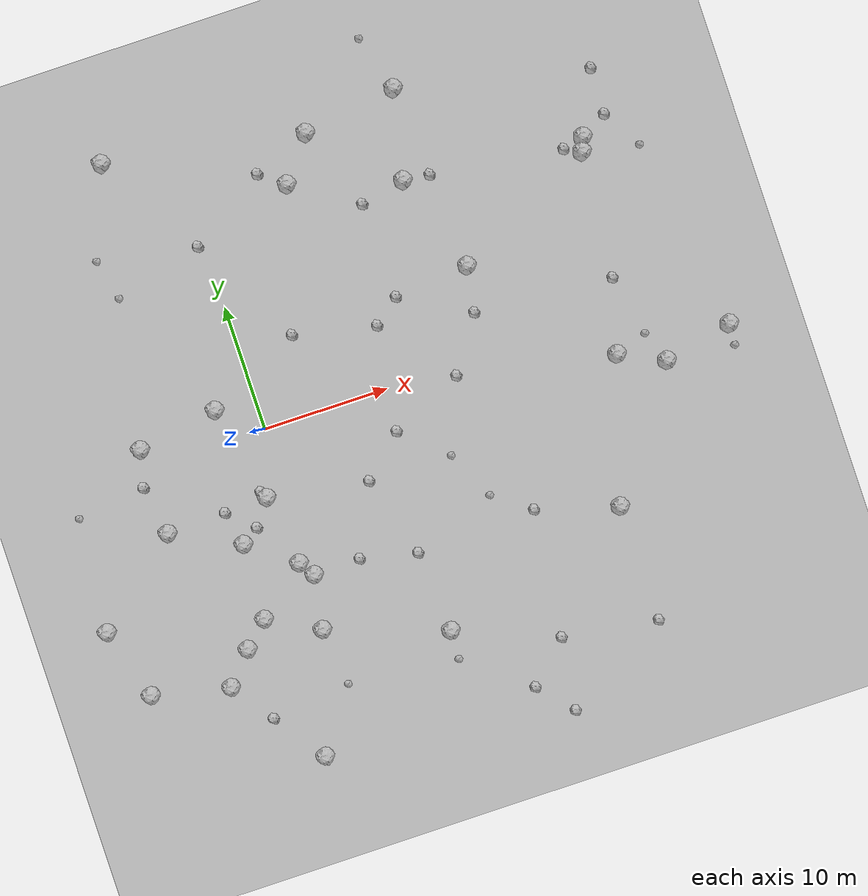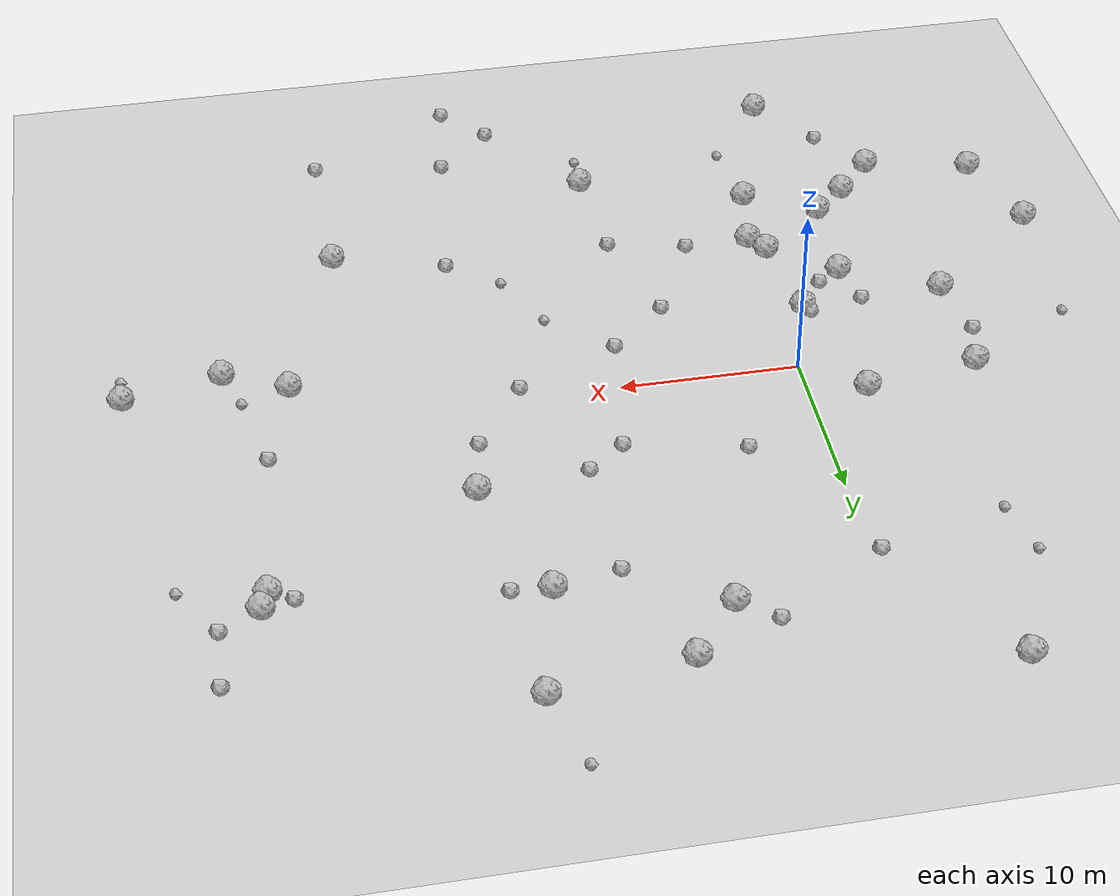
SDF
<sdf version="1.6">
 <world name="default">
  <include><uri>model://custom_ground</uri></include>
  <include><uri>model://sun</uri></include>
  <model name="rock1_0_0">
   <include><uri>model://rock1</uri><pose>10.308093503110921 20.846645113924552 0.5 0 0 0</pose></include>
  </model>
  <model name="rock1_0_1">
   <include><uri>model://rock1</uri><pose>8.833805726094432 -19.33073141889802 0.5 0 0 0</pose></include>
  </model>
  <model name="rock1_0_2">
   <include><uri>model://rock1</uri><pose>7.675220763039437 17.51723559488029 0.5 0 0 0</pose></include>
  </model>
  <model name="rock1_0_3">
   <include><uri>model://rock1</uri><pose>-14.815169350126993 -16.806266810537945 0.5 0 0 0</pose></include>
  </model>
  <model name="rock1_0_4">
   <include><uri>model://rock1</uri><pose>-9.627526794967379 -5.276134784586464 0.5 0 0 0</pose></include>
  </model>
  <model name="rock1_0_5">
   <include><uri>model://rock1</uri><pose>0.14350048495730405 -11.881437862271778 0.5 0 0 0</pose></include>
  </model>
  <model name="rock1_0_6">
   <include><uri>model://rock1</uri><pose>-16.51005586390668 -11.096822655782145 0.5 0 0 0</pose></include>
  </model>
  <model name="rock1_0_7">
   <include><uri>model://rock1</uri><pose>17.850193441742313 21.996792658042708 0.5 0 0 0</pose></include>
  </model>
  <model name="rock1_0_8">
   <include><uri>model://rock1</uri><pose>31.350161642384208 -4.706448587294485 0.5 0 0 0</pose></include>
  </model>
  <model name="rock1_0_9">
   <include><uri>model://rock1</uri><pose>16.329474908900508 14.978773140821836 0.5 0 0 0</pose></include>
  </model>
  <model name="rock1_0_10">
   <include><uri>model://rock1</uri><pose>36.83162018284337 -3.521574330771241 0.5 0 0 0</pose></include>
  </model>
  <model name="rock1_0_11">
   <include><uri>model://rock1</uri><pose>-3.4743051252785584 -25.518928062521944 0.5 0 0 0</pose></include>
  </model>
  <model name="rock1_0_12">
   <include><uri>model://rock1</uri><pose>-4.624492077895466 -13.942661119941754 0.5 0 0 0</pose></include>
  </model>
  <model name="rock1_0_13">
   <include><uri>model://rock1</uri><pose>-9.591353607719553 1.5476800889334967 0.5 0 0 0</pose></include>
  </model>
  <model name="rock1_0_14">
   <include><uri>model://rock1</uri><pose>24.333814955989972 -14.313478101322602 0.5 0 0 0</pose></include>
  </model>
  <model name="rock1_0_15">
   <include><uri>model://rock1</uri><pose>-4.317302781004811 -7.92902811894939 0.5 0 0 0</pose></include>
  </model>
  <model name="rock1_0_16">
   <include><uri>model://rock1</uri><pose>18.958581479578548 7.140094198507832 0.5 0 0 0</pose></include>
  </model>
  <model name="rock1_0_17">
   <include><uri>model://rock1</uri><pose>-8.718593291940799 -18.15909330203728 0.5 0 0 0</pose></include>
  </model>
  <model name="rock1_0_18">
   <include><uri>model://rock1</uri><pose>27.829667220051853 -3.022567563481587 0.5 0 0 0</pose></include>
  </model>
  <model name="rock1_0_19">
   <include><uri>model://rock1</uri><pose>-6.571041898843209 -15.758539917897746 0.5 0 0 0</pose></include>
  </model>
  <model name="rock1_0_20">
   <include><uri>model://rock1</uri><pose>-0.6818419119051597 -10.650925066535454 0.5 0 0 0</pose></include>
  </model>
  <model name="rock1_0_21">
   <include><uri>model://rock1</uri><pose>-5.489286542534973 23.559704599065363 0.5 0 0 0</pose></include>
  </model>
  <model name="rock1_0_22">
   <include><uri>model://rock1</uri><pose>-1.4662017126245992 -5.041043228103966 0.5 0 0 0</pose></include>
  </model>
  <model name="rock1_0_23">
   <include><uri>model://rock1</uri><pose>30.205027753007755 12.71567330010236 0.5 0 0 0</pose></include>
  </model>
  <model name="rock1_0_24">
   <include><uri>model://rock1</uri><pose>-3.1466381334157134 2.6419007982833307 0.5 0 0 0</pose></include>
  </model>
  <model name="rock1_0_25">
   <include><uri>model://rock1</uri><pose>30.624927037974302 13.80586450997398 0.5 0 0 0</pose></include>
  </model>
  <model name="rock1_0_26">
   <include><uri>model://rock1</uri><pose>-0.5845815208233027 -16.12360997560674 0.5 0 0 0</pose></include>
  </model>
  <model name="rock2_0_0">
   <include><uri>model://rock2</uri><pose>29.389943417925736 2.700648240450519 0.3 0 0 0</pose></include>
  </model>
  <model name="rock2_0_1">
   <include><uri>model://rock2</uri><pose>-2.97833081523169 -7.046550292103543 0.3 0 0 0</pose></include>
  </model>
  <model name="rock2_0_2">
   <include><uri>model://rock2</uri><pose>16.819238796077187 -22.585209690104943 0.3 0 0 0</pose></include>
  </model>
  <model name="rock2_0_3">
   <include><uri>model://rock2</uri><pose>-4.970915378720646 -5.177961687225157 0.3 0 0 0</pose></include>
  </model>
  <model name="rock2_0_4">
   <include><uri>model://rock2</uri><pose>18.42582986394212 14.766715410593314 0.3 0 0 0</pose></include>
  </model>
  <model name="rock2_0_5">
   <include><uri>model://rock2</uri><pose>9.697750903959133 -3.353988137764418 0.3 0 0 0</pose></include>
  </model>
  <model name="rock2_0_6">
   <include><uri>model://rock2</uri><pose>32.78182317745237 14.987776705843743 0.3 0 0 0</pose></include>
  </model>
  <model name="rock2_0_7">
   <include><uri>model://rock2</uri><pose>-0.43322149133977916 15.128798400059821 0.3 0 0 0</pose></include>
  </model>
  <model name="rock2_0_8">
   <include><uri>model://rock2</uri><pose>3.843271927718213 -11.854586118405724 0.3 0 0 0</pose></include>
  </model>
  <model name="rock2_0_9">
   <include><uri>model://rock2</uri><pose>13.670348708983113 -25.620359187521668 0.3 0 0 0</pose></include>
  </model>
  <model name="rock2_0_10">
   <include><uri>model://rock2</uri><pose>10.847322338386014 4.922099397847525 0.3 0 0 0</pose></include>
  </model>
  <model name="rock2_0_11">
   <include><uri>model://rock2</uri><pose>24.42032482344316 -23.670386814437343 0.3 0 0 0</pose></include>
  </model>
  <model name="rock2_0_12">
   <include><uri>model://rock2</uri><pose>15.472171147328659 -0.7111234026345805 0.3 0 0 0</pose></include>
  </model>
  <model name="rock2_0_13">
   <include><uri>model://rock2</uri><pose>32.91282382840692 18.7010484453997 0.3 0 0 0</pose></include>
  </model>
  <model name="rock2_0_14">
   <include><uri>model://rock2</uri><pose>-10.373534531003054 -1.3363828593185083 0.3 0 0 0</pose></include>
  </model>
  <model name="rock2_0_15">
   <include><uri>model://rock2</uri><pose>6.4534146444092855 -6.354133164803319 0.3 0 0 0</pose></include>
  </model>
  <model name="rock2_0_16">
   <include><uri>model://rock2</uri><pose>-1.8226353302189437 -4.502365354580785 0.3 0 0 0</pose></include>
  </model>
  <model name="rock2_0_17">
   <include><uri>model://rock2</uri><pose>12.935958921433517 6.581223633302841 0.3 0 0 0</pose></include>
  </model>
  <model name="rock2_0_18">
   <include><uri>model://rock2</uri><pose>28.934157979667056 13.380205187970667 0.3 0 0 0</pose></include>
  </model>
  <model name="rock2_0_19">
   <include><uri>model://rock2</uri><pose>5.714239045088043 19.025694543695096 0.3 0 0 0</pose></include>
  </model>
  <model name="rock2_0_20">
   <include><uri>model://rock2</uri><pose>4.327901831653161 6.320159947448069 0.3 0 0 0</pose></include>
  </model>
  <model name="rock2_0_21">
   <include><uri>model://rock2</uri><pose>16.07166598981322 -28.31161523471802 0.3 0 0 0</pose></include>
  </model>
  <model name="rock2_0_22">
   <include><uri>model://rock2</uri><pose>18.335020176544752 3.5103154856580545 0.3 0 0 0</pose></include>
  </model>
  <model name="rock2_0_23">
   <include><uri>model://rock2</uri><pose>-6.409661157281034 -21.536492449215572 0.3 0 0 0</pose></include>
  </model>
  <model name="rock2_0_24">
   <include><uri>model://rock2</uri><pose>17.914482950781114 -12.493829508151691 0.3 0 0 0</pose></include>
  </model>
  <model name="rock2_0_25">
   <include><uri>model://rock2</uri><pose>8.314373298620726 -12.843186448354459 0.3 0 0 0</pose></include>
  </model>
  <model name="rock2_0_26">
   <include><uri>model://rock2</uri><pose>12.734925102303635 14.242977952127966 0.3 0 0 0</pose></include>
  </model>
  <model name="rock3_0_0">
   <include><uri>model://rock3</uri><pose>30.4076273804924 -2.2323843435476824 0.2 0 0 0</pose></include>
  </model>
  <model name="rock3_0_1">
   <include><uri>model://rock3</uri><pose>-0.09730075121256121 -20.852241411978955 0.2 0 0 0</pose></include>
  </model>
  <model name="rock3_0_2">
   <include><uri>model://rock3</uri><pose>-8.311590570176723 16.49805685211374 0.2 0 0 0</pose></include>
  </model>
  <model name="rock3_0_3">
   <include><uri>model://rock3</uri><pose>36.764077011187894 -5.2839021176838905 0.2 0 0 0</pose></include>
  </model>
  <model name="rock3_0_4">
   <include><uri>model://rock3</uri><pose>-15.910173923021189 -2.07913007172489 0.2 0 0 0</pose></include>
  </model>
  <model name="rock3_0_5">
   <include><uri>model://rock3</uri><pose>16.50845883983672 26.53916027110491 0.2 0 0 0</pose></include>
  </model>
  <model name="rock3_0_6">
   <include><uri>model://rock3</uri><pose>34.65254353378364 11.848444795205417 0.2 0 0 0</pose></include>
  </model>
  <model name="rock3_0_7">
   <include><uri>model://rock3</uri><pose>13.111949235450687 -6.514958593905391 0.2 0 0 0</pose></include>
  </model>
  <model name="rock3_0_8">
   <include><uri>model://rock3</uri><pose>14.985381995954064 -10.389292431553294 0.2 0 0 0</pose></include>
  </model>
  <model name="rock3_0_9">
   <include><uri>model://rock3</uri><pose>-7.567825594403805 13.211613144623215 0.2 0 0 0</pose></include>
  </model>
  <model name="rock3_0_10">
   <include><uri>model://rock3</uri><pose>8.68141185604959 -21.727915502424644 0.2 0 0 0</pose></include>
  </model>
 </world>
</sdf>
